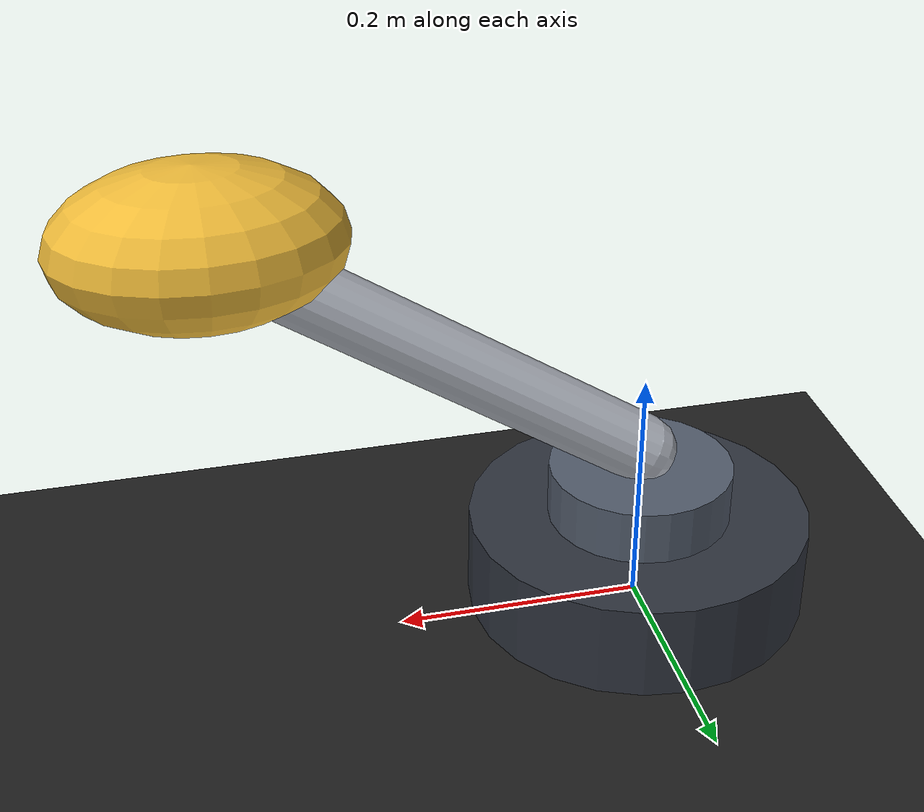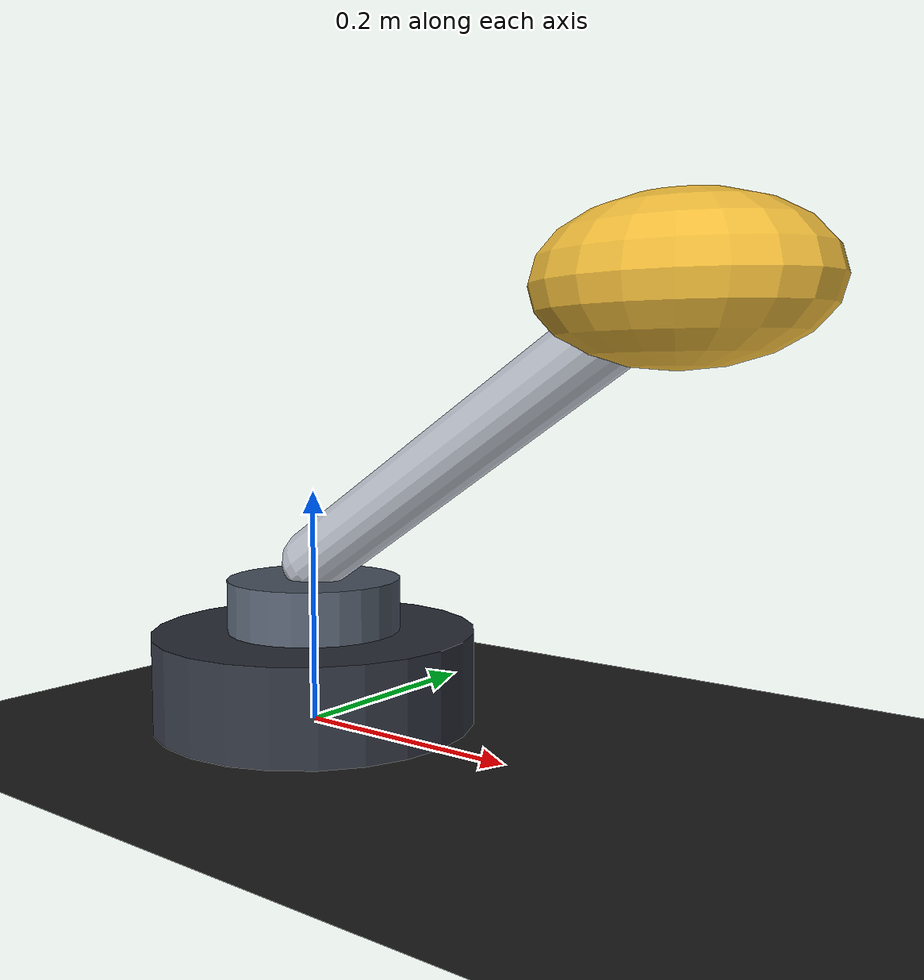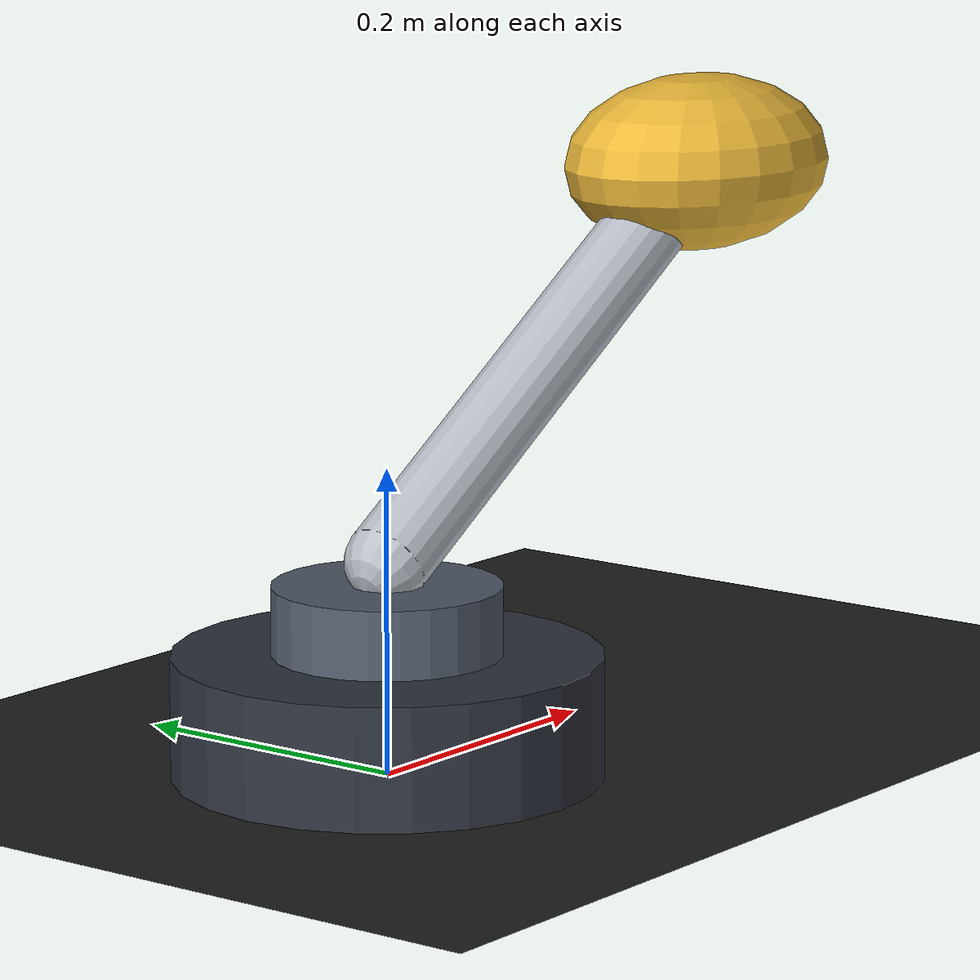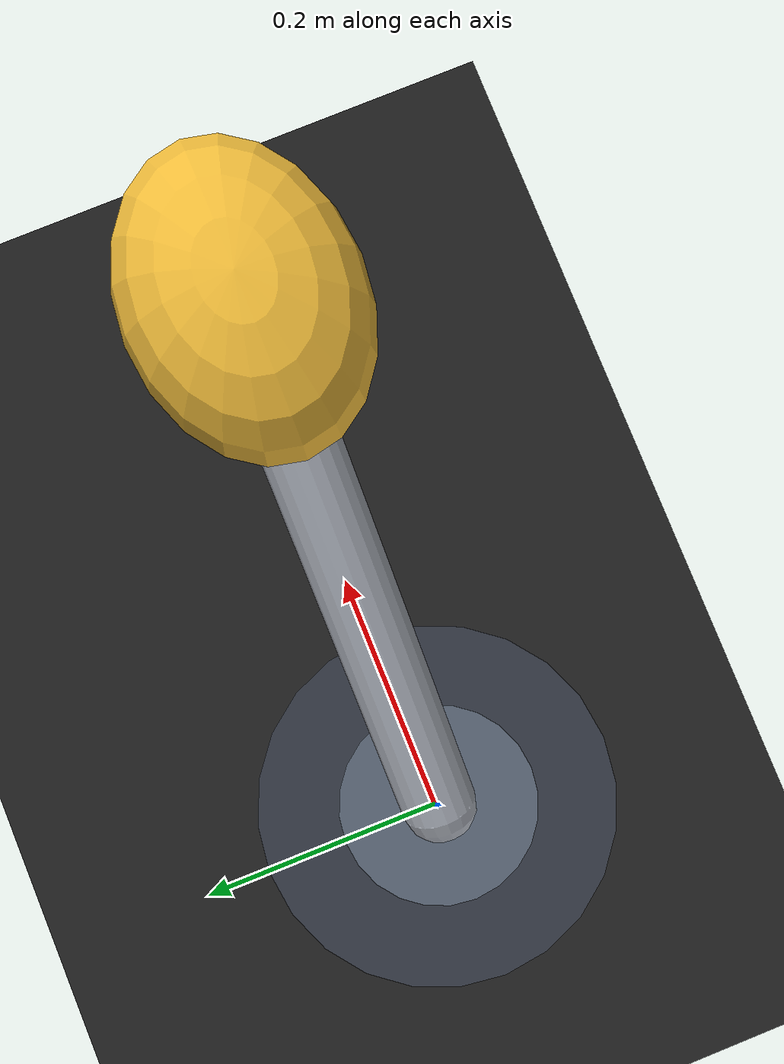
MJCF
<!-- Interactive J1-only lamp model for MuJoCo. All angular values are radians. -->
<mujoco model="lamp_j1_demo">
  <compiler angle="radian"/>
  <option timestep="0.002" gravity="0 0 -9.81"/>
  <visual>
    <global offwidth="1280" offheight="720"/>
  </visual>
  <default>
    <!-- This first pose demo is kinematic: keep visual geometry out of contact solving. -->
    <geom contype="0" conaffinity="0" friction="0.8 0.1 0.1"/>
  </default>

  <worldbody>
    <geom name="desk" type="plane" size="2 2 0.1" rgba="0.12 0.12 0.12 1"/>
    <light name="room_light" pos="0 -1 2" diffuse="0.8 0.8 0.8"/>

    <body name="base" pos="0 0 0.04">
      <geom name="base_shell" type="cylinder" size="0.14 0.04" mass="1.2"
            rgba="0.18 0.20 0.24 1"/>

      <body name="j1_rotor" pos="0 0 0.05">
        <joint name="j1_base_yaw" type="hinge" axis="0 0 1"
               range="-1.57 1.57" damping="1.2" armature="0.015"/>
        <geom name="rotor" type="cylinder" size="0.075 0.035" mass="0.35"
              rgba="0.32 0.36 0.42 1"/>

        <body name="lamp_arm" pos="0 0 0.05">
          <geom name="arm" type="capsule" fromto="0 0 0 0.34 0 0.22"
                size="0.028" mass="0.45" rgba="0.72 0.74 0.78 1"/>
          <body name="lamp_head" pos="0.34 0 0.22">
            <geom name="head" type="ellipsoid" size="0.11 0.08 0.06" mass="0.3"
                  rgba="0.92 0.72 0.22 1"/>
            <camera name="lamp_camera" pos="0.07 0 0" xyaxes="0 -1 0 0 0 1"/>
          </body>
        </body>
      </body>
    </body>
  </worldbody>

  <actuator>
    <!-- Interactive position target; scripted pose playback below uses the real motion planner. -->
    <position name="j1_position" joint="j1_base_yaw" kp="4"
              forcelimited="true" forcerange="-0.96 0.96"/>
  </actuator>

  <keyframe>
    <key name="center" qpos="0"/>
    <key name="look_left" qpos="0.8"/>
    <key name="look_right" qpos="-0.8"/>
  </keyframe>
</mujoco>
